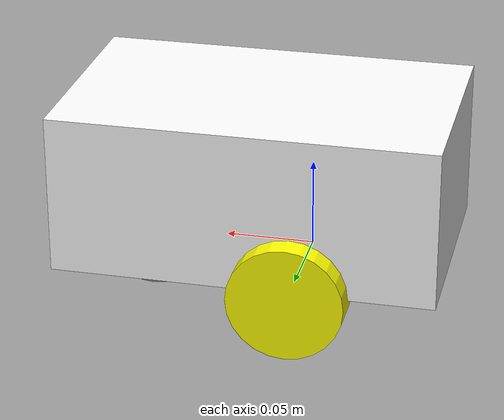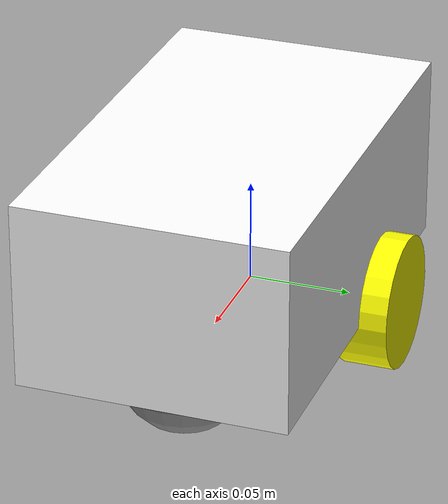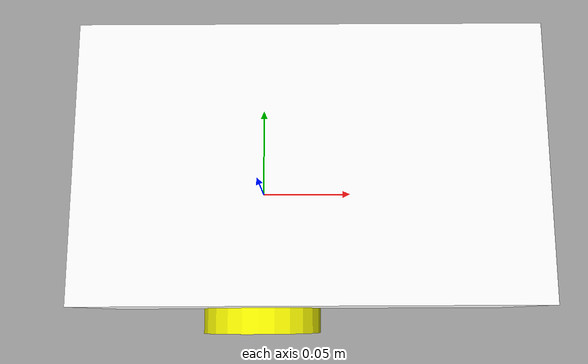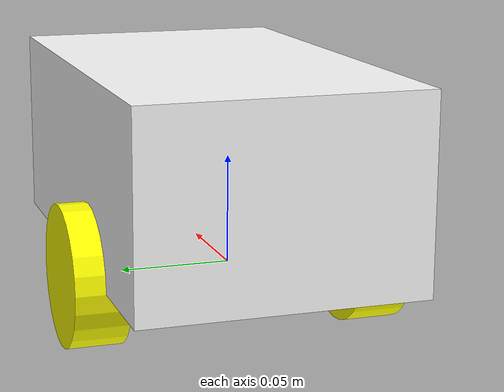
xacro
<?xml version="1.0"?>
<robot xmlns:xacro="http://www.ros.org/wiki/xacro" name="my_bot">

    <xacro:include filename="robot_core.xacro"/>
    <xacro:include filename="imu.xacro"/>
    <xacro:include filename="sonar.xacro"/>
    <xacro:include filename="lidar.xacro"/>
    <xacro:include filename="ros2_control.xacro"/>

</robot>

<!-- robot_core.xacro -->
<robot xmlns:xacro="http://www.ros.org/wiki/xacro" name="my_bot">
    <xacro:include filename="inertial_macros.xacro"/>

    <material name="yellow">
        <color rgba="1 1 0 1"/>
    </material>

    <material name="white">
        <color rgba="1 1 1 1"/>
    </material>

    <material name="gray">
        <color rgba="0.5 0.5 0.5 1"/>
    </material>

    <material name="blue">
        <color rgba="0 0 1 1"/>
    </material>

    <!-- Define the robot's base -->
    <link name="base_link">

    </link>

    <joint name="base_footprint_joint" type="fixed">
        <parent link="base_link"/>
        <child link="base_footprint"/>
        <origin xyz="0 0 0"/>
    </joint>

    <link name="base_footprint">
    </link>

    <!-- CHASSIS LINK -->
    <joint name="chassis_joint" type="fixed">
        <parent link="base_link"/>
        <child link="chassis"/>
        <origin xyz="-0.08 0 0"/>
    </joint>

    <link name="chassis">
        <visual>
            <origin xyz="0.1075 0 0.045"/>
            <geometry>
                <box size="0.215 0.13 0.09"/>
            </geometry>
            <material name="white"/>
        </visual>
        <collision>
            <origin xyz="0.1075 0 0.045"/>
            <geometry>
                <box size="0.215 0.13 0.09"/>
            </geometry>
        </collision>
        <xacro:inertial_box mass="0.4" x="0.215" y="0.13" z="0.09">
            <origin xyz="0.1075 0 0.045"/>
        </xacro:inertial_box>
    </link>

    <!-- WHEEL LINKS LEFT-->
    <joint name="wheel_left_joint" type="continuous">
        <parent link="base_link"/>
        <child link="wheel_left"/>
        <origin xyz="0 0.066 0" rpy="-1.57 0 0"/>
        <axis xyz="0 0 1"/>
    </joint>

    <link name="wheel_left">
        <visual>
            <geometry>
                <cylinder radius="0.0325" length="0.025"/>
            </geometry>
            <material name="yellow"/>
        </visual>
        <collision>
            <geometry>
                <cylinder radius="0.0325" length="0.025"/>
            </geometry>
        </collision>
        <xacro:inertial_cylinder mass="0.05" length="0.025" radius="0.0325">
            <origin xyz="0 0 0" rpy="0 0 0"/>
        </xacro:inertial_cylinder>
    </link>

    <!-- WHEEL LINKS RIGHT -->
    <joint name="wheel_right_joint" type="continuous">
        <parent link="base_link"/>
        <child link="wheel_right"/>
        <origin xyz="0 -0.066 0" rpy="1.57 0 0"/>
        <axis xyz="0 0 -1"/>
    </joint>

    <link name="wheel_right">
        <visual>
            <geometry>
                <cylinder radius="0.0325" length="0.025"/>
            </geometry>
            <material name="yellow"/>
        </visual>
        <collision>
            <geometry>
                <cylinder radius="0.0325" length="0.025"/>
            </geometry>
        </collision>
        <xacro:inertial_cylinder mass="0.05" length="0.025" radius="0.0325">
            <origin xyz="0 0 0" rpy="0 0 0"/>
        </xacro:inertial_cylinder>
    </link>

    <!-- Caster Wheel link -->

    <joint name="caster_wheel_joint" type="fixed">
        <parent link="chassis"/>
        <child link="caster_wheel"/>
        <origin xyz="0.17 0 0"/>
    </joint>

    <link name="caster_wheel">
        <visual>
            <geometry>
                <sphere radius="0.0325"/>
            </geometry>
            <material name="gray"/>
        </visual>
        <collision>
            <geometry>
                <sphere radius="0.0325"/>
            </geometry>
        </collision>
        <xacro:inertial_sphere mass="0.05" radius="0.0325">
            <origin xyz="0 0 0" rpy="0 0 0"/>
        </xacro:inertial_sphere>
    </link>

</robot>

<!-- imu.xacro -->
<robot xmlns:xacro="http://www.ros.org/wiki/xacro" >

    <link name="imu_frame"/>

    <joint name="imu_joint" type ="fixed">
        <parent link="chassis"/>
        <child link="imu_frame"/>
        <origin xyz= "0.085 -0.045 0" rpy="0 0 0"/>
    </joint>

</robot>

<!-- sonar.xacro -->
<robot xmlns:xacro="http://www.ros.org/wiki/xacro" >

    <link name="sonar_frame"/>

    <joint name="sonar_joint" type ="fixed">
        <parent link="chassis"/>
        <child link="sonar_frame"/>
        <origin xyz= "-0.075 0 0.02" rpy="0 0 0"/>
    </joint>

</robot>

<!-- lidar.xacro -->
<robot xmlns:xacro="http://www.ros.org/wiki/xacro" >

    <link name="laser_frame"/>

    <joint name="lidar_joint" type ="fixed">
        <parent link="chassis"/>
        <child link="laser_frame"/>
        <origin xyz= "-0.045 0 0.10" rpy="0 0 -1.57"/>
    </joint>

</robot>
